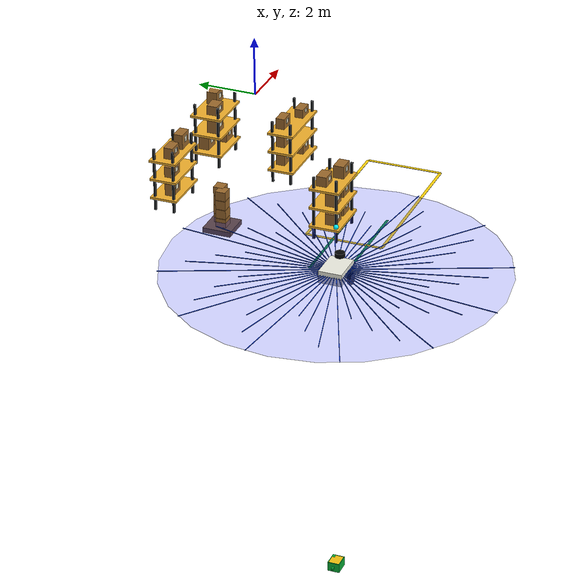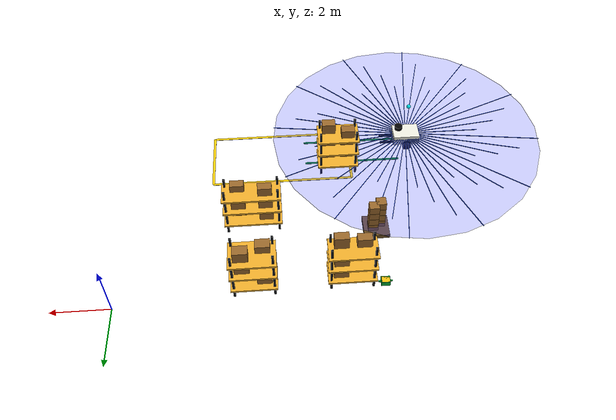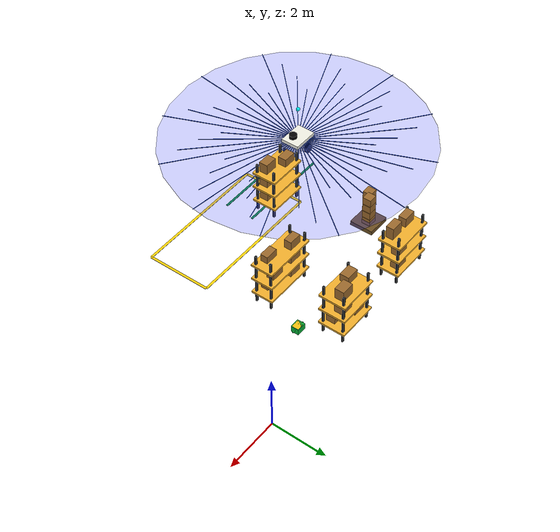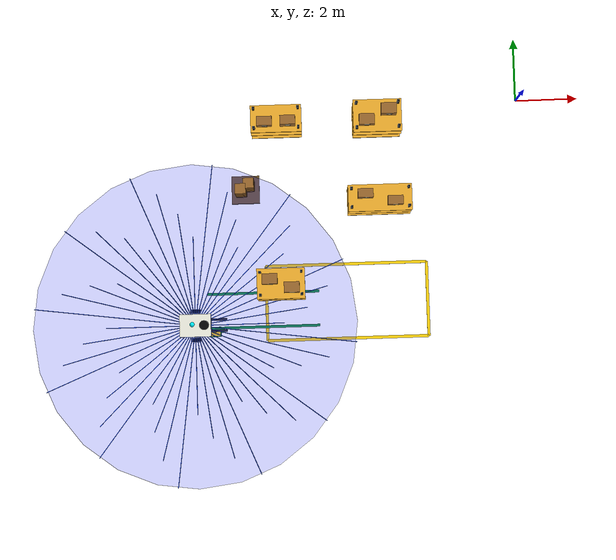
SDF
<sdf version="1.9">
 <world name="lidar_random_warehouse">
  <model name="dispatch_lane_a">
   <static>true</static>
   <pose>-8.400 -7.100 0.006 0 0 0</pose>
   <link name="link">
    <collision name="collision"><geometry><box><size>3.600 0.080 0.012</size></box></geometry></collision>
    <visual name="visual">
     <geometry><box><size>3.600 0.080 0.012</size></box></geometry>
     <material><ambient>0.04 0.45 0.16 1</ambient><diffuse>0.04 0.55 0.20 1</diffuse></material>
    </visual>
   </link>
  </model>
  <model name="dispatch_lane_b">
   <static>true</static>
   <pose>-8.400 -6.000 0.006 0 0 0</pose>
   <link name="link">
    <collision name="collision"><geometry><box><size>3.600 0.080 0.012</size></box></geometry></collision>
    <visual name="visual">
     <geometry><box><size>3.600 0.080 0.012</size></box></geometry>
     <material><ambient>0.04 0.45 0.16 1</ambient><diffuse>0.04 0.55 0.20 1</diffuse></material>
    </visual>
   </link>
  </model>
  <model name="pickup_hazard_front">
   <static>true</static>
   <pose>-5.700 -7.550 0.006 0 0 0</pose>
   <link name="link">
    <collision name="collision"><geometry><box><size>5.200 0.090 0.012</size></box></geometry></collision>
    <visual name="visual">
     <geometry><box><size>5.200 0.090 0.012</size></box></geometry>
     <material><ambient>0.90 0.75 0.03 1</ambient><diffuse>1.00 0.84 0.04 1</diffuse></material>
    </visual>
   </link>
  </model>
  <model name="pickup_hazard_back">
   <static>true</static>
   <pose>-5.700 -5.150 0.006 0 0 0</pose>
   <link name="link">
    <collision name="collision"><geometry><box><size>5.200 0.090 0.012</size></box></geometry></collision>
    <visual name="visual">
     <geometry><box><size>5.200 0.090 0.012</size></box></geometry>
     <material><ambient>0.90 0.75 0.03 1</ambient><diffuse>1.00 0.84 0.04 1</diffuse></material>
    </visual>
   </link>
  </model>
  <model name="pickup_hazard_left">
   <static>true</static>
   <pose>-8.300 -6.350 0.006 0 0 0</pose>
   <link name="link">
    <collision name="collision"><geometry><box><size>0.090 2.400 0.012</size></box></geometry></collision>
    <visual name="visual">
     <geometry><box><size>0.090 2.400 0.012</size></box></geometry>
     <material><ambient>0.90 0.75 0.03 1</ambient><diffuse>1.00 0.84 0.04 1</diffuse></material>
    </visual>
   </link>
  </model>
  <model name="pickup_hazard_right">
   <static>true</static>
   <pose>-3.100 -6.350 0.006 0 0 0</pose>
   <link name="link">
    <collision name="collision"><geometry><box><size>0.090 2.400 0.012</size></box></geometry></collision>
    <visual name="visual">
     <geometry><box><size>0.090 2.400 0.012</size></box></geometry>
     <material><ambient>0.90 0.75 0.03 1</ambient><diffuse>1.00 0.84 0.04 1</diffuse></material>
    </visual>
   </link>
  </model>
  <model name="shelf_1">
   <static>true</static>
   <pose>-7.800 -5.800 0 0 0 0</pose>
   <link name="link">
    <collision name="collision">
     <pose>0 0 1.025 0 0 0</pose>
     <geometry><box><size>1.363 0.777 2.050</size></box></geometry>
    </collision>
    <visual name="post_0">
     <pose>-0.647 -0.354 1.025 0 0 0</pose>
     <geometry><box><size>0.070 0.070 2.050</size></box></geometry>
     <material><ambient>0.03 0.04 0.05 1</ambient><diffuse>0.05 0.06 0.07 1</diffuse></material>
    </visual>
    <visual name="post_1">
     <pose>-0.647 0.354 1.025 0 0 0</pose>
     <geometry><box><size>0.070 0.070 2.050</size></box></geometry>
     <material><ambient>0.03 0.04 0.05 1</ambient><diffuse>0.05 0.06 0.07 1</diffuse></material>
    </visual>
    <visual name="post_2">
     <pose>0.647 -0.354 1.025 0 0 0</pose>
     <geometry><box><size>0.070 0.070 2.050</size></box></geometry>
     <material><ambient>0.03 0.04 0.05 1</ambient><diffuse>0.05 0.06 0.07 1</diffuse></material>
    </visual>
    <visual name="post_3">
     <pose>0.647 0.354 1.025 0 0 0</pose>
     <geometry><box><size>0.070 0.070 2.050</size></box></geometry>
     <material><ambient>0.03 0.04 0.05 1</ambient><diffuse>0.05 0.06 0.07 1</diffuse></material>
    </visual>
    <visual name="deck_1">
     <pose>0.000 0.000 0.420 0 0 0</pose>
     <geometry><box><size>1.503 0.957 0.070</size></box></geometry>
     <material><ambient>0.70 0.52 0.18 1</ambient><diffuse>0.96 0.70 0.18 1</diffuse></material>
    </visual>
    <visual name="box_1_-0.3">
     <pose>-0.341 -0.140 0.681 0 0 0</pose>
     <geometry><box><size>0.480 0.326 0.361</size></box></geometry>
     <material><ambient>0.44 0.28 0.11 1</ambient><diffuse>0.62 0.42 0.18 1</diffuse></material>
    </visual>
    <visual name="label_1_-0.3">
     <pose>-0.341 -0.307 0.708 0 0 0</pose>
     <geometry><box><size>0.134 0.012 0.137</size></box></geometry>
     <material><ambient>0.86 0.86 0.76 1</ambient><diffuse>0.98 0.96 0.84 1</diffuse></material>
    </visual>
    <visual name="barcode_1_-0.3">
     <pose>-0.254 -0.311 0.708 0 0 0</pose>
     <geometry><box><size>0.029 0.014 0.123</size></box></geometry>
     <material><ambient>0.02 0.02 0.02 1</ambient><diffuse>0.02 0.02 0.02 1</diffuse></material>
    </visual>
    <visual name="box_1_0.3">
     <pose>0.341 -0.140 0.740 0 0 0</pose>
     <geometry><box><size>0.480 0.326 0.479</size></box></geometry>
     <material><ambient>0.44 0.28 0.11 1</ambient><diffuse>0.62 0.42 0.18 1</diffuse></material>
    </visual>
    <visual name="label_1_0.3">
     <pose>0.341 -0.307 0.769 0 0 0</pose>
     <geometry><box><size>0.134 0.012 0.182</size></box></geometry>
     <material><ambient>0.86 0.86 0.76 1</ambient><diffuse>0.98 0.96 0.84 1</diffuse></material>
    </visual>
    <visual name="barcode_1_0.3">
     <pose>0.427 -0.311 0.769 0 0 0</pose>
     <geometry><box><size>0.029 0.014 0.163</size></box></geometry>
     <material><ambient>0.02 0.02 0.02 1</ambient><diffuse>0.02 0.02 0.02 1</diffuse></material>
    </visual>
    <visual name="deck_2">
     <pose>0.000 0.000 1.040 0 0 0</pose>
     <geometry><box><size>1.503 0.957 0.070</size></box></geometry>
     <material><ambient>0.70 0.52 0.18 1</ambient><diffuse>0.96 0.70 0.18 1</diffuse></material>
    </visual>
    <visual name="box_2_-0.3">
     <pose>-0.341 -0.140 1.324 0 0 0</pose>
     <geometry><box><size>0.480 0.326 0.407</size></box></geometry>
     <material><ambient>0.44 0.28 0.11 1</ambient><diffuse>0.62 0.42 0.18 1</diffuse></material>
    </visual>
    <visual name="label_2_-0.3">
     <pose>-0.341 -0.307 1.352 0 0 0</pose>
     <geometry><box><size>0.134 0.012 0.155</size></box></geometry>
     <material><ambient>0.86 0.86 0.76 1</ambient><diffuse>0.98 0.96 0.84 1</diffuse></material>
    </visual>
    <visual name="barcode_2_-0.3">
     <pose>-0.254 -0.311 1.352 0 0 0</pose>
     <geometry><box><size>0.029 0.014 0.138</size></box></geometry>
     <material><ambient>0.02 0.02 0.02 1</ambient><diffuse>0.02 0.02 0.02 1</diffuse></material>
    </visual>
    <visual name="box_2_0.3">
     <pose>0.341 -0.140 1.290 0 0 0</pose>
     <geometry><box><size>0.480 0.326 0.339</size></box></geometry>
     <material><ambient>0.44 0.28 0.11 1</ambient><diffuse>0.62 0.42 0.18 1</diffuse></material>
    </visual>
    <visual name="label_2_0.3">
     <pose>0.341 -0.307 1.316 0 0 0</pose>
     <geometry><box><size>0.134 0.012 0.129</size></box></geometry>
     <material><ambient>0.86 0.86 0.76 1</ambient><diffuse>0.98 0.96 0.84 1</diffuse></material>
    </visual>
    <visual name="barcode_2_0.3">
     <pose>0.427 -0.311 1.316 0 0 0</pose>
     <geometry><box><size>0.029 0.014 0.115</size></box></geometry>
     <material><ambient>0.02 0.02 0.02 1</ambient><diffuse>0.02 0.02 0.02 1</diffuse></material>
    </visual>
    <visual name="deck_3">
     <pose>0.000 0.000 1.660 0 0 0</pose>
     <geometry><box><size>1.503 0.957 0.070</size></box></geometry>
     <material><ambient>0.70 0.52 0.18 1</ambient><diffuse>0.96 0.70 0.18 1</diffuse></material>
    </visual>
    <visual name="box_3_-0.3">
     <pose>-0.341 0.140 1.900 0 0 0</pose>
     <geometry><box><size>0.480 0.326 0.320</size></box></geometry>
     <material><ambient>0.44 0.28 0.11 1</ambient><diffuse>0.62 0.42 0.18 1</diffuse></material>
    </visual>
    <visual name="label_3_-0.3">
     <pose>-0.341 -0.027 1.927 0 0 0</pose>
     <geometry><box><size>0.134 0.012 0.122</size></box></geometry>
     <material><ambient>0.86 0.86 0.76 1</ambient><diffuse>0.98 0.96 0.84 1</diffuse></material>
    </visual>
    <visual name="barcode_3_-0.3">
     <pose>-0.254 -0.031 1.927 0 0 0</pose>
     <geometry><box><size>0.029 0.014 0.109</size></box></geometry>
     <material><ambient>0.02 0.02 0.02 1</ambient><diffuse>0.02 0.02 0.02 1</diffuse></material>
    </visual>
    <visual name="box_3_0.3">
     <pose>0.341 -0.140 1.940 0 0 0</pose>
     <geometry><box><size>0.480 0.326 0.400</size></box></geometry>
     <material><ambient>0.44 0.28 0.11 1</ambient><diffuse>0.62 0.42 0.18 1</diffuse></material>
    </visual>
    <visual name="label_3_0.3">
     <pose>0.341 -0.307 1.968 0 0 0</pose>
     <geometry><box><size>0.134 0.012 0.152</size></box></geometry>
     <material><ambient>0.86 0.86 0.76 1</ambient><diffuse>0.98 0.96 0.84 1</diffuse></material>
    </visual>
    <visual name="barcode_3_0.3">
     <pose>0.427 -0.311 1.968 0 0 0</pose>
     <geometry><box><size>0.029 0.014 0.136</size></box></geometry>
     <material><ambient>0.02 0.02 0.02 1</ambient><diffuse>0.02 0.02 0.02 1</diffuse></material>
    </visual>
   </link>
  </model>
  <model name="shelf_6">
   <static>true</static>
   <pose>-4.600 -3.200 0 0 0 0</pose>
   <link name="link">
    <collision name="collision">
     <pose>0 0 1.025 0 0 0</pose>
     <geometry><box><size>1.867 0.662 2.050</size></box></geometry>
    </collision>
    <visual name="post_0">
     <pose>-0.899 -0.296 1.025 0 0 0</pose>
     <geometry><box><size>0.070 0.070 2.050</size></box></geometry>
     <material><ambient>0.03 0.04 0.05 1</ambient><diffuse>0.05 0.06 0.07 1</diffuse></material>
    </visual>
    <visual name="post_1">
     <pose>-0.899 0.296 1.025 0 0 0</pose>
     <geometry><box><size>0.070 0.070 2.050</size></box></geometry>
     <material><ambient>0.03 0.04 0.05 1</ambient><diffuse>0.05 0.06 0.07 1</diffuse></material>
    </visual>
    <visual name="post_2">
     <pose>0.899 -0.296 1.025 0 0 0</pose>
     <geometry><box><size>0.070 0.070 2.050</size></box></geometry>
     <material><ambient>0.03 0.04 0.05 1</ambient><diffuse>0.05 0.06 0.07 1</diffuse></material>
    </visual>
    <visual name="post_3">
     <pose>0.899 0.296 1.025 0 0 0</pose>
     <geometry><box><size>0.070 0.070 2.050</size></box></geometry>
     <material><ambient>0.03 0.04 0.05 1</ambient><diffuse>0.05 0.06 0.07 1</diffuse></material>
    </visual>
    <visual name="deck_1">
     <pose>0.000 0.000 0.420 0 0 0</pose>
     <geometry><box><size>2.007 0.842 0.070</size></box></geometry>
     <material><ambient>0.70 0.52 0.18 1</ambient><diffuse>0.96 0.70 0.18 1</diffuse></material>
    </visual>
    <visual name="box_1_-0.5">
     <pose>-0.467 0.119 0.731 0 0 0</pose>
     <geometry><box><size>0.480 0.278 0.463</size></box></geometry>
     <material><ambient>0.44 0.28 0.11 1</ambient><diffuse>0.62 0.42 0.18 1</diffuse></material>
    </visual>
    <visual name="label_1_-0.5">
     <pose>-0.467 -0.024 0.761 0 0 0</pose>
     <geometry><box><size>0.134 0.012 0.176</size></box></geometry>
     <material><ambient>0.86 0.86 0.76 1</ambient><diffuse>0.98 0.96 0.84 1</diffuse></material>
    </visual>
    <visual name="barcode_1_-0.5">
     <pose>-0.380 -0.028 0.761 0 0 0</pose>
     <geometry><box><size>0.029 0.014 0.157</size></box></geometry>
     <material><ambient>0.02 0.02 0.02 1</ambient><diffuse>0.02 0.02 0.02 1</diffuse></material>
    </visual>
    <visual name="box_1_0.5">
     <pose>0.467 -0.119 0.721 0 0 0</pose>
     <geometry><box><size>0.480 0.278 0.443</size></box></geometry>
     <material><ambient>0.44 0.28 0.11 1</ambient><diffuse>0.62 0.42 0.18 1</diffuse></material>
    </visual>
    <visual name="label_1_0.5">
     <pose>0.467 -0.262 0.750 0 0 0</pose>
     <geometry><box><size>0.134 0.012 0.168</size></box></geometry>
     <material><ambient>0.86 0.86 0.76 1</ambient><diffuse>0.98 0.96 0.84 1</diffuse></material>
    </visual>
    <visual name="barcode_1_0.5">
     <pose>0.553 -0.266 0.750 0 0 0</pose>
     <geometry><box><size>0.029 0.014 0.151</size></box></geometry>
     <material><ambient>0.02 0.02 0.02 1</ambient><diffuse>0.02 0.02 0.02 1</diffuse></material>
    </visual>
    <visual name="deck_2">
     <pose>0.000 0.000 1.040 0 0 0</pose>
     <geometry><box><size>2.007 0.842 0.070</size></box></geometry>
     <material><ambient>0.70 0.52 0.18 1</ambient><diffuse>0.96 0.70 0.18 1</diffuse></material>
    </visual>
    <visual name="box_2_-0.5">
     <pose>-0.467 0.119 1.313 0 0 0</pose>
     <geometry><box><size>0.480 0.278 0.386</size></box></geometry>
     <material><ambient>0.44 0.28 0.11 1</ambient><diffuse>0.62 0.42 0.18 1</diffuse></material>
    </visual>
    <visual name="label_2_-0.5">
     <pose>-0.467 -0.024 1.341 0 0 0</pose>
     <geometry><box><size>0.134 0.012 0.147</size></box></geometry>
     <material><ambient>0.86 0.86 0.76 1</ambient><diffuse>0.98 0.96 0.84 1</diffuse></material>
    </visual>
    <visual name="barcode_2_-0.5">
     <pose>-0.380 -0.028 1.341 0 0 0</pose>
     <geometry><box><size>0.029 0.014 0.131</size></box></geometry>
     <material><ambient>0.02 0.02 0.02 1</ambient><diffuse>0.02 0.02 0.02 1</diffuse></material>
    </visual>
    <visual name="box_2_0.5">
     <pose>0.467 0.119 1.282 0 0 0</pose>
     <geometry><box><size>0.480 0.278 0.323</size></box></geometry>
     <material><ambient>0.44 0.28 0.11 1</ambient><diffuse>0.62 0.42 0.18 1</diffuse></material>
    </visual>
    <visual name="label_2_0.5">
     <pose>0.467 -0.024 1.308 0 0 0</pose>
     <geometry><box><size>0.134 0.012 0.123</size></box></geometry>
     <material><ambient>0.86 0.86 0.76 1</ambient><diffuse>0.98 0.96 0.84 1</diffuse></material>
    </visual>
    <visual name="barcode_2_0.5">
     <pose>0.553 -0.028 1.308 0 0 0</pose>
     <geometry><box><size>0.029 0.014 0.110</size></box></geometry>
     <material><ambient>0.02 0.02 0.02 1</ambient><diffuse>0.02 0.02 0.02 1</diffuse></material>
    </visual>
    <visual name="deck_3">
     <pose>0.000 0.000 1.660 0 0 0</pose>
     <geometry><box><size>2.007 0.842 0.070</size></box></geometry>
     <material><ambient>0.70 0.52 0.18 1</ambient><diffuse>0.96 0.70 0.18 1</diffuse></material>
    </visual>
    <visual name="box_3_-0.5">
     <pose>-0.467 0.119 1.913 0 0 0</pose>
     <geometry><box><size>0.480 0.278 0.346</size></box></geometry>
     <material><ambient>0.44 0.28 0.11 1</ambient><diffuse>0.62 0.42 0.18 1</diffuse></material>
    </visual>
    <visual name="label_3_-0.5">
     <pose>-0.467 -0.024 1.940 0 0 0</pose>
     <geometry><box><size>0.134 0.012 0.132</size></box></geometry>
     <material><ambient>0.86 0.86 0.76 1</ambient><diffuse>0.98 0.96 0.84 1</diffuse></material>
    </visual>
    <visual name="barcode_3_-0.5">
     <pose>-0.380 -0.028 1.940 0 0 0</pose>
     <geometry><box><size>0.029 0.014 0.118</size></box></geometry>
     <material><ambient>0.02 0.02 0.02 1</ambient><diffuse>0.02 0.02 0.02 1</diffuse></material>
    </visual>
    <visual name="box_3_0.5">
     <pose>0.467 -0.119 1.881 0 0 0</pose>
     <geometry><box><size>0.480 0.278 0.282</size></box></geometry>
     <material><ambient>0.44 0.28 0.11 1</ambient><diffuse>0.62 0.42 0.18 1</diffuse></material>
    </visual>
    <visual name="label_3_0.5">
     <pose>0.467 -0.262 1.907 0 0 0</pose>
     <geometry><box><size>0.134 0.012 0.107</size></box></geometry>
     <material><ambient>0.86 0.86 0.76 1</ambient><diffuse>0.98 0.96 0.84 1</diffuse></material>
    </visual>
    <visual name="barcode_3_0.5">
     <pose>0.553 -0.266 1.907 0 0 0</pose>
     <geometry><box><size>0.029 0.014 0.096</size></box></geometry>
     <material><ambient>0.02 0.02 0.02 1</ambient><diffuse>0.02 0.02 0.02 1</diffuse></material>
    </visual>
   </link>
  </model>
  <model name="shelf_11">
   <static>true</static>
   <pose>-7.800 -0.600 0 0 0 0</pose>
   <link name="link">
    <collision name="collision">
     <pose>0 0 1.025 0 0 0</pose>
     <geometry><box><size>1.466 0.683 2.050</size></box></geometry>
    </collision>
    <visual name="post_0">
     <pose>-0.698 -0.306 1.025 0 0 0</pose>
     <geometry><box><size>0.070 0.070 2.050</size></box></geometry>
     <material><ambient>0.03 0.04 0.05 1</ambient><diffuse>0.05 0.06 0.07 1</diffuse></material>
    </visual>
    <visual name="post_1">
     <pose>-0.698 0.306 1.025 0 0 0</pose>
     <geometry><box><size>0.070 0.070 2.050</size></box></geometry>
     <material><ambient>0.03 0.04 0.05 1</ambient><diffuse>0.05 0.06 0.07 1</diffuse></material>
    </visual>
    <visual name="post_2">
     <pose>0.698 -0.306 1.025 0 0 0</pose>
     <geometry><box><size>0.070 0.070 2.050</size></box></geometry>
     <material><ambient>0.03 0.04 0.05 1</ambient><diffuse>0.05 0.06 0.07 1</diffuse></material>
    </visual>
    <visual name="post_3">
     <pose>0.698 0.306 1.025 0 0 0</pose>
     <geometry><box><size>0.070 0.070 2.050</size></box></geometry>
     <material><ambient>0.03 0.04 0.05 1</ambient><diffuse>0.05 0.06 0.07 1</diffuse></material>
    </visual>
    <visual name="deck_1">
     <pose>0.000 0.000 0.420 0 0 0</pose>
     <geometry><box><size>1.606 0.863 0.070</size></box></geometry>
     <material><ambient>0.70 0.52 0.18 1</ambient><diffuse>0.96 0.70 0.18 1</diffuse></material>
    </visual>
    <visual name="box_1_-0.4">
     <pose>-0.367 -0.123 0.694 0 0 0</pose>
     <geometry><box><size>0.480 0.287 0.389</size></box></geometry>
     <material><ambient>0.44 0.28 0.11 1</ambient><diffuse>0.62 0.42 0.18 1</diffuse></material>
    </visual>
    <visual name="label_1_-0.4">
     <pose>-0.367 -0.270 0.722 0 0 0</pose>
     <geometry><box><size>0.134 0.012 0.148</size></box></geometry>
     <material><ambient>0.86 0.86 0.76 1</ambient><diffuse>0.98 0.96 0.84 1</diffuse></material>
    </visual>
    <visual name="barcode_1_-0.4">
     <pose>-0.280 -0.274 0.722 0 0 0</pose>
     <geometry><box><size>0.029 0.014 0.132</size></box></geometry>
     <material><ambient>0.02 0.02 0.02 1</ambient><diffuse>0.02 0.02 0.02 1</diffuse></material>
    </visual>
    <visual name="box_1_0.4">
     <pose>0.367 0.123 0.667 0 0 0</pose>
     <geometry><box><size>0.480 0.287 0.334</size></box></geometry>
     <material><ambient>0.44 0.28 0.11 1</ambient><diffuse>0.62 0.42 0.18 1</diffuse></material>
    </visual>
    <visual name="label_1_0.4">
     <pose>0.367 -0.024 0.693 0 0 0</pose>
     <geometry><box><size>0.134 0.012 0.127</size></box></geometry>
     <material><ambient>0.86 0.86 0.76 1</ambient><diffuse>0.98 0.96 0.84 1</diffuse></material>
    </visual>
    <visual name="barcode_1_0.4">
     <pose>0.453 -0.028 0.693 0 0 0</pose>
     <geometry><box><size>0.029 0.014 0.113</size></box></geometry>
     <material><ambient>0.02 0.02 0.02 1</ambient><diffuse>0.02 0.02 0.02 1</diffuse></material>
    </visual>
    <visual name="deck_2">
     <pose>0.000 0.000 1.040 0 0 0</pose>
     <geometry><box><size>1.606 0.863 0.070</size></box></geometry>
     <material><ambient>0.70 0.52 0.18 1</ambient><diffuse>0.96 0.70 0.18 1</diffuse></material>
    </visual>
    <visual name="box_2_-0.4">
     <pose>-0.367 -0.123 1.287 0 0 0</pose>
     <geometry><box><size>0.480 0.287 0.334</size></box></geometry>
     <material><ambient>0.44 0.28 0.11 1</ambient><diffuse>0.62 0.42 0.18 1</diffuse></material>
    </visual>
    <visual name="label_2_-0.4">
     <pose>-0.367 -0.270 1.314 0 0 0</pose>
     <geometry><box><size>0.134 0.012 0.127</size></box></geometry>
     <material><ambient>0.86 0.86 0.76 1</ambient><diffuse>0.98 0.96 0.84 1</diffuse></material>
    </visual>
    <visual name="barcode_2_-0.4">
     <pose>-0.280 -0.274 1.314 0 0 0</pose>
     <geometry><box><size>0.029 0.014 0.114</size></box></geometry>
     <material><ambient>0.02 0.02 0.02 1</ambient><diffuse>0.02 0.02 0.02 1</diffuse></material>
    </visual>
    <visual name="box_2_0.4">
     <pose>0.367 0.123 1.307 0 0 0</pose>
     <geometry><box><size>0.480 0.287 0.373</size></box></geometry>
     <material><ambient>0.44 0.28 0.11 1</ambient><diffuse>0.62 0.42 0.18 1</diffuse></material>
    </visual>
    <visual name="label_2_0.4">
     <pose>0.367 -0.024 1.334 0 0 0</pose>
     <geometry><box><size>0.134 0.012 0.142</size></box></geometry>
     <material><ambient>0.86 0.86 0.76 1</ambient><diffuse>0.98 0.96 0.84 1</diffuse></material>
    </visual>
    <visual name="barcode_2_0.4">
     <pose>0.453 -0.028 1.334 0 0 0</pose>
     <geometry><box><size>0.029 0.014 0.127</size></box></geometry>
     <material><ambient>0.02 0.02 0.02 1</ambient><diffuse>0.02 0.02 0.02 1</diffuse></material>
    </visual>
    <visual name="deck_3">
     <pose>0.000 0.000 1.660 0 0 0</pose>
     <geometry><box><size>1.606 0.863 0.070</size></box></geometry>
     <material><ambient>0.70 0.52 0.18 1</ambient><diffuse>0.96 0.70 0.18 1</diffuse></material>
    </visual>
    <visual name="box_3_-0.4">
     <pose>-0.367 -0.123 1.923 0 0 0</pose>
     <geometry><box><size>0.480 0.287 0.365</size></box></geometry>
     <material><ambient>0.44 0.28 0.11 1</ambient><diffuse>0.62 0.42 0.18 1</diffuse></material>
    </visual>
    <visual name="label_3_-0.4">
     <pose>-0.367 -0.270 1.950 0 0 0</pose>
     <geometry><box><size>0.134 0.012 0.139</size></box></geometry>
     <material><ambient>0.86 0.86 0.76 1</ambient><diffuse>0.98 0.96 0.84 1</diffuse></material>
    </visual>
    <visual name="barcode_3_-0.4">
     <pose>-0.280 -0.274 1.950 0 0 0</pose>
     <geometry><box><size>0.029 0.014 0.124</size></box></geometry>
     <material><ambient>0.02 0.02 0.02 1</ambient><diffuse>0.02 0.02 0.02 1</diffuse></material>
    </visual>
    <visual name="box_3_0.4">
     <pose>0.367 -0.123 1.977 0 0 0</pose>
     <geometry><box><size>0.480 0.287 0.473</size></box></geometry>
     <material><ambient>0.44 0.28 0.11 1</ambient><diffuse>0.62 0.42 0.18 1</diffuse></material>
    </visual>
    <visual name="label_3_0.4">
     <pose>0.367 -0.270 2.006 0 0 0</pose>
     <geometry><box><size>0.134 0.012 0.180</size></box></geometry>
     <material><ambient>0.86 0.86 0.76 1</ambient><diffuse>0.98 0.96 0.84 1</diffuse></material>
    </visual>
    <visual name="barcode_3_0.4">
     <pose>0.453 -0.274 2.006 0 0 0</pose>
     <geometry><box><size>0.029 0.014 0.161</size></box></geometry>
     <material><ambient>0.02 0.02 0.02 1</ambient><diffuse>0.02 0.02 0.02 1</diffuse></material>
    </visual>
   </link>
  </model>
  <model name="shelf_12">
   <static>true</static>
   <pose>-4.600 -0.600 0 0 0 0</pose>
   <link name="link">
    <collision name="collision">
     <pose>0 0 1.025 0 0 0</pose>
     <geometry><box><size>1.388 0.844 2.050</size></box></geometry>
    </collision>
    <visual name="post_0">
     <pose>-0.659 -0.387 1.025 0 0 0</pose>
     <geometry><box><size>0.070 0.070 2.050</size></box></geometry>
     <material><ambient>0.03 0.04 0.05 1</ambient><diffuse>0.05 0.06 0.07 1</diffuse></material>
    </visual>
    <visual name="post_1">
     <pose>-0.659 0.387 1.025 0 0 0</pose>
     <geometry><box><size>0.070 0.070 2.050</size></box></geometry>
     <material><ambient>0.03 0.04 0.05 1</ambient><diffuse>0.05 0.06 0.07 1</diffuse></material>
    </visual>
    <visual name="post_2">
     <pose>0.659 -0.387 1.025 0 0 0</pose>
     <geometry><box><size>0.070 0.070 2.050</size></box></geometry>
     <material><ambient>0.03 0.04 0.05 1</ambient><diffuse>0.05 0.06 0.07 1</diffuse></material>
    </visual>
    <visual name="post_3">
     <pose>0.659 0.387 1.025 0 0 0</pose>
     <geometry><box><size>0.070 0.070 2.050</size></box></geometry>
     <material><ambient>0.03 0.04 0.05 1</ambient><diffuse>0.05 0.06 0.07 1</diffuse></material>
    </visual>
    <visual name="deck_1">
     <pose>0.000 0.000 0.420 0 0 0</pose>
     <geometry><box><size>1.528 1.024 0.070</size></box></geometry>
     <material><ambient>0.70 0.52 0.18 1</ambient><diffuse>0.96 0.70 0.18 1</diffuse></material>
    </visual>
    <visual name="box_1_-0.3">
     <pose>-0.347 0.152 0.728 0 0 0</pose>
     <geometry><box><size>0.480 0.340 0.455</size></box></geometry>
     <material><ambient>0.44 0.28 0.11 1</ambient><diffuse>0.62 0.42 0.18 1</diffuse></material>
    </visual>
    <visual name="label_1_-0.3">
     <pose>-0.347 -0.022 0.757 0 0 0</pose>
     <geometry><box><size>0.134 0.012 0.173</size></box></geometry>
     <material><ambient>0.86 0.86 0.76 1</ambient><diffuse>0.98 0.96 0.84 1</diffuse></material>
    </visual>
    <visual name="barcode_1_-0.3">
     <pose>-0.260 -0.026 0.757 0 0 0</pose>
     <geometry><box><size>0.029 0.014 0.155</size></box></geometry>
     <material><ambient>0.02 0.02 0.02 1</ambient><diffuse>0.02 0.02 0.02 1</diffuse></material>
    </visual>
    <visual name="box_1_0.3">
     <pose>0.347 -0.152 0.715 0 0 0</pose>
     <geometry><box><size>0.480 0.340 0.431</size></box></geometry>
     <material><ambient>0.44 0.28 0.11 1</ambient><diffuse>0.62 0.42 0.18 1</diffuse></material>
    </visual>
    <visual name="label_1_0.3">
     <pose>0.347 -0.326 0.744 0 0 0</pose>
     <geometry><box><size>0.134 0.012 0.164</size></box></geometry>
     <material><ambient>0.86 0.86 0.76 1</ambient><diffuse>0.98 0.96 0.84 1</diffuse></material>
    </visual>
    <visual name="barcode_1_0.3">
     <pose>0.433 -0.330 0.744 0 0 0</pose>
     <geometry><box><size>0.029 0.014 0.147</size></box></geometry>
     <material><ambient>0.02 0.02 0.02 1</ambient><diffuse>0.02 0.02 0.02 1</diffuse></material>
    </visual>
    <visual name="deck_2">
     <pose>0.000 0.000 1.040 0 0 0</pose>
     <geometry><box><size>1.528 1.024 0.070</size></box></geometry>
     <material><ambient>0.70 0.52 0.18 1</ambient><diffuse>0.96 0.70 0.18 1</diffuse></material>
    </visual>
    <visual name="box_2_-0.3">
     <pose>-0.347 -0.152 1.327 0 0 0</pose>
     <geometry><box><size>0.480 0.340 0.415</size></box></geometry>
     <material><ambient>0.44 0.28 0.11 1</ambient><diffuse>0.62 0.42 0.18 1</diffuse></material>
    </visual>
    <visual name="label_2_-0.3">
     <pose>-0.347 -0.326 1.356 0 0 0</pose>
     <geometry><box><size>0.134 0.012 0.158</size></box></geometry>
     <material><ambient>0.86 0.86 0.76 1</ambient><diffuse>0.98 0.96 0.84 1</diffuse></material>
    </visual>
    <visual name="barcode_2_-0.3">
     <pose>-0.260 -0.330 1.356 0 0 0</pose>
     <geometry><box><size>0.029 0.014 0.141</size></box></geometry>
     <material><ambient>0.02 0.02 0.02 1</ambient><diffuse>0.02 0.02 0.02 1</diffuse></material>
    </visual>
    <visual name="box_2_0.3">
     <pose>0.347 0.152 1.302 0 0 0</pose>
     <geometry><box><size>0.480 0.340 0.365</size></box></geometry>
     <material><ambient>0.44 0.28 0.11 1</ambient><diffuse>0.62 0.42 0.18 1</diffuse></material>
    </visual>
    <visual name="label_2_0.3">
     <pose>0.347 -0.022 1.330 0 0 0</pose>
     <geometry><box><size>0.134 0.012 0.139</size></box></geometry>
     <material><ambient>0.86 0.86 0.76 1</ambient><diffuse>0.98 0.96 0.84 1</diffuse></material>
    </visual>
    <visual name="barcode_2_0.3">
     <pose>0.433 -0.026 1.330 0 0 0</pose>
     <geometry><box><size>0.029 0.014 0.124</size></box></geometry>
     <material><ambient>0.02 0.02 0.02 1</ambient><diffuse>0.02 0.02 0.02 1</diffuse></material>
    </visual>
    <visual name="deck_3">
     <pose>0.000 0.000 1.660 0 0 0</pose>
     <geometry><box><size>1.528 1.024 0.070</size></box></geometry>
     <material><ambient>0.70 0.52 0.18 1</ambient><diffuse>0.96 0.70 0.18 1</diffuse></material>
    </visual>
    <visual name="box_3_-0.3">
     <pose>-0.347 -0.152 1.891 0 0 0</pose>
     <geometry><box><size>0.480 0.340 0.303</size></box></geometry>
     <material><ambient>0.44 0.28 0.11 1</ambient><diffuse>0.62 0.42 0.18 1</diffuse></material>
    </visual>
    <visual name="label_3_-0.3">
     <pose>-0.347 -0.326 1.917 0 0 0</pose>
     <geometry><box><size>0.134 0.012 0.115</size></box></geometry>
     <material><ambient>0.86 0.86 0.76 1</ambient><diffuse>0.98 0.96 0.84 1</diffuse></material>
    </visual>
    <visual name="barcode_3_-0.3">
     <pose>-0.260 -0.330 1.917 0 0 0</pose>
     <geometry><box><size>0.029 0.014 0.103</size></box></geometry>
     <material><ambient>0.02 0.02 0.02 1</ambient><diffuse>0.02 0.02 0.02 1</diffuse></material>
    </visual>
    <visual name="box_3_0.3">
     <pose>0.347 0.152 1.947 0 0 0</pose>
     <geometry><box><size>0.480 0.340 0.414</size></box></geometry>
     <material><ambient>0.44 0.28 0.11 1</ambient><diffuse>0.62 0.42 0.18 1</diffuse></material>
    </visual>
    <visual name="label_3_0.3">
     <pose>0.347 -0.022 1.975 0 0 0</pose>
     <geometry><box><size>0.134 0.012 0.157</size></box></geometry>
     <material><ambient>0.86 0.86 0.76 1</ambient><diffuse>0.98 0.96 0.84 1</diffuse></material>
    </visual>
    <visual name="barcode_3_0.3">
     <pose>0.433 -0.026 1.975 0 0 0</pose>
     <geometry><box><size>0.029 0.014 0.141</size></box></geometry>
     <material><ambient>0.02 0.02 0.02 1</ambient><diffuse>0.02 0.02 0.02 1</diffuse></material>
    </visual>
   </link>
  </model>
  <model name="pallet_stack_13">
   <static>true</static>
   <pose>-8.874 -2.656 0 0 0 0</pose>
   <link name="link">
    <collision name="collision">
     <pose>0 0 0.55 0 0 0</pose>
     <geometry><box><size>0.891 0.891 1.10</size></box></geometry>
    </collision>
    <visual name="pallet">
     <pose>0.000 0.000 0.080 0 0 0</pose>
     <geometry><box><size>0.891 0.891 0.160</size></box></geometry>
     <material><ambient>0.30 0.21 0.10 1</ambient><diffuse>0.44 0.32 0.14 1</diffuse></material>
    </visual>
    <visual name="case_0_a">
     <pose>-0.128 -0.085 0.340 0 0 0</pose>
     <geometry><box><size>0.341 0.320 0.280</size></box></geometry>
     <material><ambient>0.44 0.28 0.11 1</ambient><diffuse>0.62 0.42 0.18 1</diffuse></material>
    </visual>
    <visual name="case_0_b">
     <pose>0.128 0.085 0.340 0 0 0</pose>
     <geometry><box><size>0.341 0.320 0.280</size></box></geometry>
     <material><ambient>0.44 0.28 0.11 1</ambient><diffuse>0.62 0.42 0.18 1</diffuse></material>
    </visual>
    <visual name="case_1_a">
     <pose>-0.128 -0.085 0.640 0 0 0</pose>
     <geometry><box><size>0.341 0.320 0.280</size></box></geometry>
     <material><ambient>0.44 0.28 0.11 1</ambient><diffuse>0.62 0.42 0.18 1</diffuse></material>
    </visual>
    <visual name="case_1_b">
     <pose>0.128 0.085 0.640 0 0 0</pose>
     <geometry><box><size>0.341 0.320 0.280</size></box></geometry>
     <material><ambient>0.44 0.28 0.11 1</ambient><diffuse>0.62 0.42 0.18 1</diffuse></material>
    </visual>
    <visual name="case_2_a">
     <pose>-0.128 -0.085 0.940 0 0 0</pose>
     <geometry><box><size>0.341 0.320 0.280</size></box></geometry>
     <material><ambient>0.44 0.28 0.11 1</ambient><diffuse>0.62 0.42 0.18 1</diffuse></material>
    </visual>
    <visual name="case_2_b">
     <pose>0.128 0.085 0.940 0 0 0</pose>
     <geometry><box><size>0.341 0.320 0.280</size></box></geometry>
     <material><ambient>0.44 0.28 0.11 1</ambient><diffuse>0.62 0.42 0.18 1</diffuse></material>
    </visual>
    <visual name="case_3_a">
     <pose>-0.128 -0.085 1.240 0 0 0</pose>
     <geometry><box><size>0.341 0.320 0.280</size></box></geometry>
     <material><ambient>0.44 0.28 0.11 1</ambient><diffuse>0.62 0.42 0.18 1</diffuse></material>
    </visual>
    <visual name="case_3_b">
     <pose>0.128 0.085 1.240 0 0 0</pose>
     <geometry><box><size>0.341 0.320 0.280</size></box></geometry>
     <material><ambient>0.44 0.28 0.11 1</ambient><diffuse>0.62 0.42 0.18 1</diffuse></material>
    </visual>
   </link>
  </model>
  <model name="warehouse_robot">
   <pose>-10.600 -7.000 0.32 0 0 0.000</pose>
   <link name="base_link">
    <inertial><mass>20</mass></inertial>
    <collision name="base_collision"><geometry><box><size>1.0 0.72 0.38</size></box></geometry></collision>
    <visual name="base_visual">
     <geometry><box><size>1.0 0.72 0.38</size></box></geometry>
     <material><ambient>0.86 0.86 0.82 1</ambient><diffuse>0.95 0.95 0.90 1</diffuse></material>
    </visual>
    <visual name="left_wheel_visual">
     <pose>0 0.46 -0.16 1.5708 0 0</pose>
     <geometry><cylinder><radius>0.17</radius><length>0.12</length></cylinder></geometry>
     <material><ambient>0.03 0.04 0.05 1</ambient><diffuse>0.04 0.05 0.06 1</diffuse></material>
    </visual>
    <visual name="right_wheel_visual">
     <pose>0 -0.46 -0.16 1.5708 0 0</pose>
     <geometry><cylinder><radius>0.17</radius><length>0.12</length></cylinder></geometry>
     <material><ambient>0.03 0.04 0.05 1</ambient><diffuse>0.04 0.05 0.06 1</diffuse></material>
    </visual>
    <visual name="fork_left">
     <pose>0.63 0.18 -0.20 0 0 0</pose>
     <geometry><box><size>0.75 0.07 0.06</size></box></geometry>
     <material><ambient>0.08 0.08 0.08 1</ambient><diffuse>0.12 0.12 0.12 1</diffuse></material>
    </visual>
    <visual name="fork_right">
     <pose>0.63 -0.18 -0.20 0 0 0</pose>
     <geometry><box><size>0.75 0.07 0.06</size></box></geometry>
     <material><ambient>0.08 0.08 0.08 1</ambient><diffuse>0.12 0.12 0.12 1</diffuse></material>
    </visual>
    <visual name="lidar">
     <pose>0.30 0 0.40 0 0 0</pose>
     <geometry><cylinder><radius>0.15</radius><length>0.14</length></cylinder></geometry>
     <material><ambient>0.02 0.02 0.02 1</ambient><diffuse>0.02 0.02 0.02 1</diffuse></material>
    </visual>
    <visual name="scan_marker">
     <pose>0 0 1.45 0 0 0</pose>
     <geometry><sphere><radius>0.075</radius></sphere></geometry>
     <material><ambient>0.0 0.95 1.0 1</ambient><diffuse>0.0 0.95 1.0 1</diffuse></material>
    </visual>
    <visual name="scan_disc">
     <pose>0 0 0.035 0 0 0</pose>
     <geometry><cylinder><radius>5.200</radius><length>0.010</length></cylinder></geometry>
     <material>
      <ambient>0.05 0.10 1.00 0.18</ambient>
      <diffuse>0.05 0.10 1.00 0.18</diffuse>
      <transparency>0.72</transparency>
     </material>
    </visual>
    <visual name="scan_ray_0">
     <pose>1.430 0.000 0.055 0 0 0.000</pose>
     <geometry><box><size>2.860 0.018 0.018</size></box></geometry>
     <material><ambient>0.04 0.17 0.64 1</ambient><diffuse>0.08 0.28 0.95 1</diffuse></material>
    </visual>
    <visual name="scan_ray_1">
     <pose>1.804 0.238 0.055 0 0 0.131</pose>
     <geometry><box><size>3.640 0.018 0.018</size></box></geometry>
     <material><ambient>0.04 0.17 0.64 1</ambient><diffuse>0.08 0.28 0.95 1</diffuse></material>
    </visual>
    <visual name="scan_ray_2">
     <pose>2.135 0.572 0.055 0 0 0.262</pose>
     <geometry><box><size>4.420 0.018 0.018</size></box></geometry>
     <material><ambient>0.04 0.17 0.64 1</ambient><diffuse>0.08 0.28 0.95 1</diffuse></material>
    </visual>
    <visual name="scan_ray_3">
     <pose>2.402 0.995 0.055 0 0 0.393</pose>
     <geometry><box><size>5.200 0.018 0.018</size></box></geometry>
     <material><ambient>0.04 0.17 0.64 1</ambient><diffuse>0.08 0.28 0.95 1</diffuse></material>
    </visual>
    <visual name="scan_ray_4">
     <pose>1.238 0.715 0.055 0 0 0.524</pose>
     <geometry><box><size>2.860 0.018 0.018</size></box></geometry>
     <material><ambient>0.04 0.17 0.64 1</ambient><diffuse>0.08 0.28 0.95 1</diffuse></material>
    </visual>
    <visual name="scan_ray_5">
     <pose>1.444 1.108 0.055 0 0 0.654</pose>
     <geometry><box><size>3.640 0.018 0.018</size></box></geometry>
     <material><ambient>0.04 0.17 0.64 1</ambient><diffuse>0.08 0.28 0.95 1</diffuse></material>
    </visual>
    <visual name="scan_ray_6">
     <pose>1.563 1.563 0.055 0 0 0.785</pose>
     <geometry><box><size>4.420 0.018 0.018</size></box></geometry>
     <material><ambient>0.04 0.17 0.64 1</ambient><diffuse>0.08 0.28 0.95 1</diffuse></material>
    </visual>
    <visual name="scan_ray_7">
     <pose>1.583 2.063 0.055 0 0 0.916</pose>
     <geometry><box><size>5.200 0.018 0.018</size></box></geometry>
     <material><ambient>0.04 0.17 0.64 1</ambient><diffuse>0.08 0.28 0.95 1</diffuse></material>
    </visual>
    <visual name="scan_ray_8">
     <pose>0.715 1.238 0.055 0 0 1.047</pose>
     <geometry><box><size>2.860 0.018 0.018</size></box></geometry>
     <material><ambient>0.04 0.17 0.64 1</ambient><diffuse>0.08 0.28 0.95 1</diffuse></material>
    </visual>
    <visual name="scan_ray_9">
     <pose>0.696 1.681 0.055 0 0 1.178</pose>
     <geometry><box><size>3.640 0.018 0.018</size></box></geometry>
     <material><ambient>0.04 0.17 0.64 1</ambient><diffuse>0.08 0.28 0.95 1</diffuse></material>
    </visual>
    <visual name="scan_ray_10">
     <pose>0.572 2.135 0.055 0 0 1.309</pose>
     <geometry><box><size>4.420 0.018 0.018</size></box></geometry>
     <material><ambient>0.04 0.17 0.64 1</ambient><diffuse>0.08 0.28 0.95 1</diffuse></material>
    </visual>
    <visual name="scan_ray_11">
     <pose>0.339 2.578 0.055 0 0 1.440</pose>
     <geometry><box><size>5.200 0.018 0.018</size></box></geometry>
     <material><ambient>0.04 0.17 0.64 1</ambient><diffuse>0.08 0.28 0.95 1</diffuse></material>
    </visual>
    <visual name="scan_ray_12">
     <pose>0.000 1.430 0.055 0 0 1.571</pose>
     <geometry><box><size>2.860 0.018 0.018</size></box></geometry>
     <material><ambient>0.04 0.17 0.64 1</ambient><diffuse>0.08 0.28 0.95 1</diffuse></material>
    </visual>
    <visual name="scan_ray_13">
     <pose>-0.238 1.804 0.055 0 0 1.702</pose>
     <geometry><box><size>3.640 0.018 0.018</size></box></geometry>
     <material><ambient>0.04 0.17 0.64 1</ambient><diffuse>0.08 0.28 0.95 1</diffuse></material>
    </visual>
    <visual name="scan_ray_14">
     <pose>-0.572 2.135 0.055 0 0 1.833</pose>
     <geometry><box><size>4.420 0.018 0.018</size></box></geometry>
     <material><ambient>0.04 0.17 0.64 1</ambient><diffuse>0.08 0.28 0.95 1</diffuse></material>
    </visual>
    <visual name="scan_ray_15">
     <pose>-0.995 2.402 0.055 0 0 1.963</pose>
     <geometry><box><size>5.200 0.018 0.018</size></box></geometry>
     <material><ambient>0.04 0.17 0.64 1</ambient><diffuse>0.08 0.28 0.95 1</diffuse></material>
    </visual>
    <visual name="scan_ray_16">
     <pose>-0.715 1.238 0.055 0 0 2.094</pose>
     <geometry><box><size>2.860 0.018 0.018</size></box></geometry>
     <material><ambient>0.04 0.17 0.64 1</ambient><diffuse>0.08 0.28 0.95 1</diffuse></material>
    </visual>
    <visual name="scan_ray_17">
     <pose>-1.108 1.444 0.055 0 0 2.225</pose>
     <geometry><box><size>3.640 0.018 0.018</size></box></geometry>
     <material><ambient>0.04 0.17 0.64 1</ambient><diffuse>0.08 0.28 0.95 1</diffuse></material>
    </visual>
    <visual name="scan_ray_18">
     <pose>-1.563 1.563 0.055 0 0 2.356</pose>
     <geometry><box><size>4.420 0.018 0.018</size></box></geometry>
     <material><ambient>0.04 0.17 0.64 1</ambient><diffuse>0.08 0.28 0.95 1</diffuse></material>
    </visual>
    <visual name="scan_ray_19">
     <pose>-2.063 1.583 0.055 0 0 2.487</pose>
     <geometry><box><size>5.200 0.018 0.018</size></box></geometry>
     <material><ambient>0.04 0.17 0.64 1</ambient><diffuse>0.08 0.28 0.95 1</diffuse></material>
    </visual>
    <visual name="scan_ray_20">
     <pose>-1.238 0.715 0.055 0 0 2.618</pose>
     <geometry><box><size>2.860 0.018 0.018</size></box></geometry>
     <material><ambient>0.04 0.17 0.64 1</ambient><diffuse>0.08 0.28 0.95 1</diffuse></material>
    </visual>
    <visual name="scan_ray_21">
     <pose>-1.681 0.696 0.055 0 0 2.749</pose>
     <geometry><box><size>3.640 0.018 0.018</size></box></geometry>
     <material><ambient>0.04 0.17 0.64 1</ambient><diffuse>0.08 0.28 0.95 1</diffuse></material>
    </visual>
    <visual name="scan_ray_22">
     <pose>-2.135 0.572 0.055 0 0 2.880</pose>
     <geometry><box><size>4.420 0.018 0.018</size></box></geometry>
     <material><ambient>0.04 0.17 0.64 1</ambient><diffuse>0.08 0.28 0.95 1</diffuse></material>
    </visual>
    <visual name="scan_ray_23">
     <pose>-2.578 0.339 0.055 0 0 3.011</pose>
     <geometry><box><size>5.200 0.018 0.018</size></box></geometry>
     <material><ambient>0.04 0.17 0.64 1</ambient><diffuse>0.08 0.28 0.95 1</diffuse></material>
    </visual>
    <visual name="scan_ray_24">
     <pose>-1.430 0.000 0.055 0 0 3.142</pose>
     <geometry><box><size>2.860 0.018 0.018</size></box></geometry>
     <material><ambient>0.04 0.17 0.64 1</ambient><diffuse>0.08 0.28 0.95 1</diffuse></material>
    </visual>
    <visual name="scan_ray_25">
     <pose>-1.804 -0.238 0.055 0 0 3.272</pose>
     <geometry><box><size>3.640 0.018 0.018</size></box></geometry>
     <material><ambient>0.04 0.17 0.64 1</ambient><diffuse>0.08 0.28 0.95 1</diffuse></material>
    </visual>
    <visual name="scan_ray_26">
     <pose>-2.135 -0.572 0.055 0 0 3.403</pose>
     <geometry><box><size>4.420 0.018 0.018</size></box></geometry>
     <material><ambient>0.04 0.17 0.64 1</ambient><diffuse>0.08 0.28 0.95 1</diffuse></material>
    </visual>
    <visual name="scan_ray_27">
     <pose>-2.402 -0.995 0.055 0 0 3.534</pose>
     <geometry><box><size>5.200 0.018 0.018</size></box></geometry>
     <material><ambient>0.04 0.17 0.64 1</ambient><diffuse>0.08 0.28 0.95 1</diffuse></material>
    </visual>
    <visual name="scan_ray_28">
     <pose>-1.238 -0.715 0.055 0 0 3.665</pose>
     <geometry><box><size>2.860 0.018 0.018</size></box></geometry>
     <material><ambient>0.04 0.17 0.64 1</ambient><diffuse>0.08 0.28 0.95 1</diffuse></material>
    </visual>
    <visual name="scan_ray_29">
     <pose>-1.444 -1.108 0.055 0 0 3.796</pose>
     <geometry><box><size>3.640 0.018 0.018</size></box></geometry>
     <material><ambient>0.04 0.17 0.64 1</ambient><diffuse>0.08 0.28 0.95 1</diffuse></material>
    </visual>
    <visual name="scan_ray_30">
     <pose>-1.563 -1.563 0.055 0 0 3.927</pose>
     <geometry><box><size>4.420 0.018 0.018</size></box></geometry>
     <material><ambient>0.04 0.17 0.64 1</ambient><diffuse>0.08 0.28 0.95 1</diffuse></material>
    </visual>
    <visual name="scan_ray_31">
     <pose>-1.583 -2.063 0.055 0 0 4.058</pose>
     <geometry><box><size>5.200 0.018 0.018</size></box></geometry>
     <material><ambient>0.04 0.17 0.64 1</ambient><diffuse>0.08 0.28 0.95 1</diffuse></material>
    </visual>
    <visual name="scan_ray_32">
     <pose>-0.715 -1.238 0.055 0 0 4.189</pose>
     <geometry><box><size>2.860 0.018 0.018</size></box></geometry>
     <material><ambient>0.04 0.17 0.64 1</ambient><diffuse>0.08 0.28 0.95 1</diffuse></material>
    </visual>
    <visual name="scan_ray_33">
     <pose>-0.696 -1.681 0.055 0 0 4.320</pose>
     <geometry><box><size>3.640 0.018 0.018</size></box></geometry>
     <material><ambient>0.04 0.17 0.64 1</ambient><diffuse>0.08 0.28 0.95 1</diffuse></material>
    </visual>
    <visual name="scan_ray_34">
     <pose>-0.572 -2.135 0.055 0 0 4.451</pose>
     <geometry><box><size>4.420 0.018 0.018</size></box></geometry>
     <material><ambient>0.04 0.17 0.64 1</ambient><diffuse>0.08 0.28 0.95 1</diffuse></material>
    </visual>
    <visual name="scan_ray_35">
     <pose>-0.339 -2.578 0.055 0 0 4.581</pose>
     <geometry><box><size>5.200 0.018 0.018</size></box></geometry>
     <material><ambient>0.04 0.17 0.64 1</ambient><diffuse>0.08 0.28 0.95 1</diffuse></material>
    </visual>
    <visual name="scan_ray_36">
     <pose>-0.000 -1.430 0.055 0 0 4.712</pose>
     <geometry><box><size>2.860 0.018 0.018</size></box></geometry>
     <material><ambient>0.04 0.17 0.64 1</ambient><diffuse>0.08 0.28 0.95 1</diffuse></material>
    </visual>
    <visual name="scan_ray_37">
     <pose>0.238 -1.804 0.055 0 0 4.843</pose>
     <geometry><box><size>3.640 0.018 0.018</size></box></geometry>
     <material><ambient>0.04 0.17 0.64 1</ambient><diffuse>0.08 0.28 0.95 1</diffuse></material>
    </visual>
    <visual name="scan_ray_38">
     <pose>0.572 -2.135 0.055 0 0 4.974</pose>
     <geometry><box><size>4.420 0.018 0.018</size></box></geometry>
     <material><ambient>0.04 0.17 0.64 1</ambient><diffuse>0.08 0.28 0.95 1</diffuse></material>
    </visual>
    <visual name="scan_ray_39">
     <pose>0.995 -2.402 0.055 0 0 5.105</pose>
     <geometry><box><size>5.200 0.018 0.018</size></box></geometry>
     <material><ambient>0.04 0.17 0.64 1</ambient><diffuse>0.08 0.28 0.95 1</diffuse></material>
    </visual>
    <visual name="scan_ray_40">
     <pose>0.715 -1.238 0.055 0 0 5.236</pose>
     <geometry><box><size>2.860 0.018 0.018</size></box></geometry>
     <material><ambient>0.04 0.17 0.64 1</ambient><diffuse>0.08 0.28 0.95 1</diffuse></material>
    </visual>
    <visual name="scan_ray_41">
     <pose>1.108 -1.444 0.055 0 0 5.367</pose>
     <geometry><box><size>3.640 0.018 0.018</size></box></geometry>
     <material><ambient>0.04 0.17 0.64 1</ambient><diffuse>0.08 0.28 0.95 1</diffuse></material>
    </visual>
    <visual name="scan_ray_42">
     <pose>1.563 -1.563 0.055 0 0 5.498</pose>
     <geometry><box><size>4.420 0.018 0.018</size></box></geometry>
     <material><ambient>0.04 0.17 0.64 1</ambient><diffuse>0.08 0.28 0.95 1</diffuse></material>
    </visual>
    <visual name="scan_ray_43">
     <pose>2.063 -1.583 0.055 0 0 5.629</pose>
     <geometry><box><size>5.200 0.018 0.018</size></box></geometry>
     <material><ambient>0.04 0.17 0.64 1</ambient><diffuse>0.08 0.28 0.95 1</diffuse></material>
    </visual>
    <visual name="scan_ray_44">
     <pose>1.238 -0.715 0.055 0 0 5.760</pose>
     <geometry><box><size>2.860 0.018 0.018</size></box></geometry>
     <material><ambient>0.04 0.17 0.64 1</ambient><diffuse>0.08 0.28 0.95 1</diffuse></material>
    </visual>
    <visual name="scan_ray_45">
     <pose>1.681 -0.696 0.055 0 0 5.890</pose>
     <geometry><box><size>3.640 0.018 0.018</size></box></geometry>
     <material><ambient>0.04 0.17 0.64 1</ambient><diffuse>0.08 0.28 0.95 1</diffuse></material>
    </visual>
    <visual name="scan_ray_46">
     <pose>2.135 -0.572 0.055 0 0 6.021</pose>
     <geometry><box><size>4.420 0.018 0.018</size></box></geometry>
     <material><ambient>0.04 0.17 0.64 1</ambient><diffuse>0.08 0.28 0.95 1</diffuse></material>
    </visual>
    <visual name="scan_ray_47">
     <pose>2.578 -0.339 0.055 0 0 6.152</pose>
     <geometry><box><size>5.200 0.018 0.018</size></box></geometry>
     <material><ambient>0.04 0.17 0.64 1</ambient><diffuse>0.08 0.28 0.95 1</diffuse></material>
    </visual>
   </link>
  </model>
  <model name="cargo_item">
   <static>false</static>
   <pose>-10.600 -7.000 -10.000 0 0 0</pose>
   <link name="link">
    <collision name="collision"><geometry><box><size>0.420 0.340 0.300</size></box></geometry></collision>
    <visual name="visual">
     <geometry><box><size>0.420 0.340 0.300</size></box></geometry>
     <material><ambient>0.75 0.58 0.03 1</ambient><diffuse>0.98 0.78 0.06 1</diffuse></material>
    </visual>
   </link>
  </model>
  <model name="pickup_marker">
   <static>false</static>
   <pose>-10.600 -7.000 -10.000 0 0 0</pose>
   <link name="link">
    <collision name="collision"><geometry><box><size>0.700 0.060 0.060</size></box></geometry></collision>
    <visual name="visual">
     <geometry><box><size>0.700 0.060 0.060</size></box></geometry>
     <material><ambient>0.02 0.45 0.14 1</ambient><diffuse>0.03 0.70 0.22 1</diffuse></material>
    </visual>
   </link>
  </model>
  <model name="delivered_item">
   <static>false</static>
   <pose>-10.600 -7.000 -10.000 0 0 0</pose>
   <link name="link">
    <collision name="collision"><geometry><box><size>0.460 0.380 0.300</size></box></geometry></collision>
    <visual name="visual">
     <geometry><box><size>0.460 0.380 0.300</size></box></geometry>
     <material><ambient>0.02 0.45 0.14 1</ambient><diffuse>0.03 0.70 0.22 1</diffuse></material>
    </visual>
   </link>
  </model>
 </world>
</sdf>
